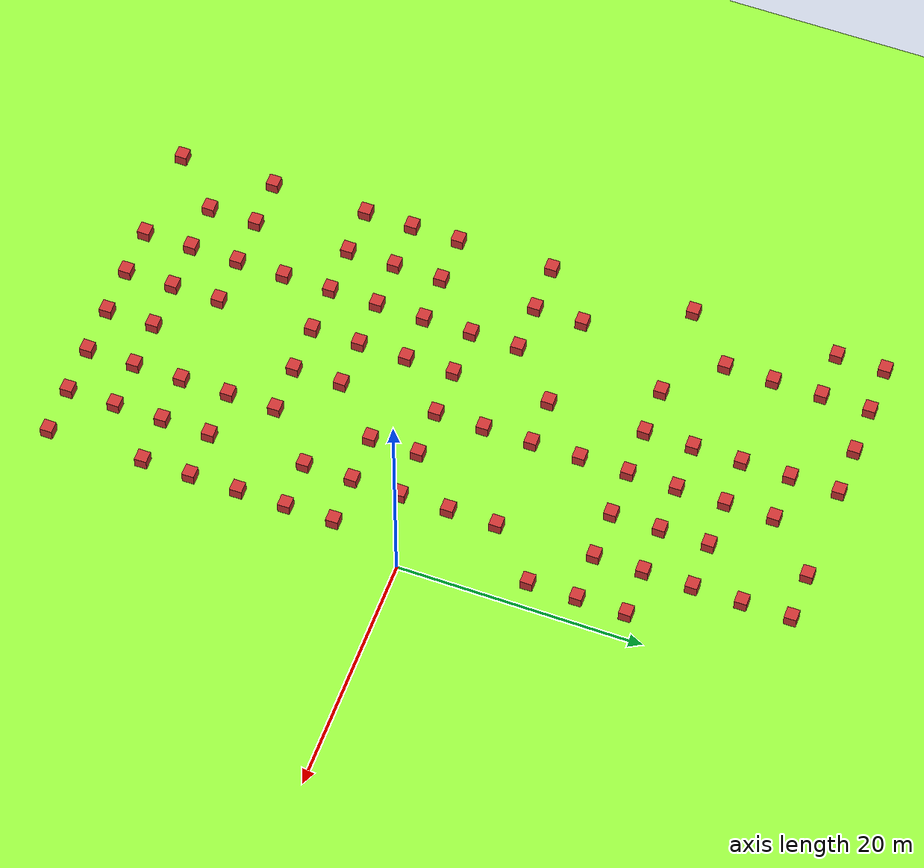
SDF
<sdf version="1.9">
 <world name="lawn_boxes">
  <model name="ground_plane">
   <static>true</static>
   <link name="link">
    <collision name="collision">
     <geometry><plane><normal>0 0 1</normal><size>1 1</size></plane></geometry>
     <surface>
      <friction><ode><mu>0.6</mu><mu2>0.6</mu2></ode></friction>
      <contact><collide_bitmask>65535</collide_bitmask><ode><min_depth>0.005</min_depth><kp>1e8</kp></ode></contact>
     </surface>
    </collision>
    <visual name="visual">
     <cast_shadows>false</cast_shadows>
     <geometry><plane><normal>0 0 1</normal><size>400 400</size></plane></geometry>
     <material>
      <diffuse>0.6 1.0 0.25 0.5</diffuse>
      <specular>0 0 0 0</specular>
      <emissive>0 0 0 0</emissive>
     </material>
    </visual>
    <inertial>
     <mass>1</mass>
     <inertia><ixx>1</ixx><ixy>0</ixy><ixz>0</ixz><iyy>1</iyy><iyz>0</iyz><izz>1</izz></inertia>
    </inertial>
   </link>
  </model>
  <model name="obstacle_box_0">
   <static>true</static>
   <pose>-30.00 -30.00 0.50 0 0 0</pose>
   <link name="link">
    <collision name="collision"><geometry><box><size>1.0 1.0 1.0</size></box></geometry></collision>
    <visual name="visual">
     <geometry><box><size>1.0 1.0 1.0</size></box></geometry>
     <material><diffuse>0.8 0.2 0.2 1</diffuse><ambient>0.8 0.2 0.2 1</ambient></material>
    </visual>
   </link>
  </model>
  <model name="obstacle_box_1">
   <static>true</static>
   <pose>-30.00 -22.00 0.50 0 0 0</pose>
   <link name="link">
    <collision name="collision"><geometry><box><size>1.0 1.0 1.0</size></box></geometry></collision>
    <visual name="visual">
     <geometry><box><size>1.0 1.0 1.0</size></box></geometry>
     <material><diffuse>0.8 0.2 0.2 1</diffuse><ambient>0.8 0.2 0.2 1</ambient></material>
    </visual>
   </link>
  </model>
  <model name="obstacle_box_2">
   <static>true</static>
   <pose>-30.00 -14.00 0.50 0 0 0</pose>
   <link name="link">
    <collision name="collision"><geometry><box><size>1.0 1.0 1.0</size></box></geometry></collision>
    <visual name="visual">
     <geometry><box><size>1.0 1.0 1.0</size></box></geometry>
     <material><diffuse>0.8 0.2 0.2 1</diffuse><ambient>0.8 0.2 0.2 1</ambient></material>
    </visual>
   </link>
  </model>
  <model name="obstacle_box_3">
   <static>true</static>
   <pose>-30.00 -10.00 0.50 0 0 0</pose>
   <link name="link">
    <collision name="collision"><geometry><box><size>1.0 1.0 1.0</size></box></geometry></collision>
    <visual name="visual">
     <geometry><box><size>1.0 1.0 1.0</size></box></geometry>
     <material><diffuse>0.8 0.2 0.2 1</diffuse><ambient>0.8 0.2 0.2 1</ambient></material>
    </visual>
   </link>
  </model>
  <model name="obstacle_box_4">
   <static>true</static>
   <pose>-30.00 -6.00 0.50 0 0 0</pose>
   <link name="link">
    <collision name="collision"><geometry><box><size>1.0 1.0 1.0</size></box></geometry></collision>
    <visual name="visual">
     <geometry><box><size>1.0 1.0 1.0</size></box></geometry>
     <material><diffuse>0.8 0.2 0.2 1</diffuse><ambient>0.8 0.2 0.2 1</ambient></material>
    </visual>
   </link>
  </model>
  <model name="obstacle_box_5">
   <static>true</static>
   <pose>-30.00 2.00 0.50 0 0 0</pose>
   <link name="link">
    <collision name="collision"><geometry><box><size>1.0 1.0 1.0</size></box></geometry></collision>
    <visual name="visual">
     <geometry><box><size>1.0 1.0 1.0</size></box></geometry>
     <material><diffuse>0.8 0.2 0.2 1</diffuse><ambient>0.8 0.2 0.2 1</ambient></material>
    </visual>
   </link>
  </model>
  <model name="obstacle_box_6">
   <static>true</static>
   <pose>-30.00 14.00 0.50 0 0 0</pose>
   <link name="link">
    <collision name="collision"><geometry><box><size>1.0 1.0 1.0</size></box></geometry></collision>
    <visual name="visual">
     <geometry><box><size>1.0 1.0 1.0</size></box></geometry>
     <material><diffuse>0.8 0.2 0.2 1</diffuse><ambient>0.8 0.2 0.2 1</ambient></material>
    </visual>
   </link>
  </model>
  <model name="obstacle_box_7">
   <static>true</static>
   <pose>-30.00 26.00 0.50 0 0 0</pose>
   <link name="link">
    <collision name="collision"><geometry><box><size>1.0 1.0 1.0</size></box></geometry></collision>
    <visual name="visual">
     <geometry><box><size>1.0 1.0 1.0</size></box></geometry>
     <material><diffuse>0.8 0.2 0.2 1</diffuse><ambient>0.8 0.2 0.2 1</ambient></material>
    </visual>
   </link>
  </model>
  <model name="obstacle_box_8">
   <static>true</static>
   <pose>-30.00 30.00 0.50 0 0 0</pose>
   <link name="link">
    <collision name="collision"><geometry><box><size>1.0 1.0 1.0</size></box></geometry></collision>
    <visual name="visual">
     <geometry><box><size>1.0 1.0 1.0</size></box></geometry>
     <material><diffuse>0.8 0.2 0.2 1</diffuse><ambient>0.8 0.2 0.2 1</ambient></material>
    </visual>
   </link>
  </model>
  <model name="obstacle_box_9">
   <static>true</static>
   <pose>-26.00 -26.00 0.50 0 0 0</pose>
   <link name="link">
    <collision name="collision"><geometry><box><size>1.0 1.0 1.0</size></box></geometry></collision>
    <visual name="visual">
     <geometry><box><size>1.0 1.0 1.0</size></box></geometry>
     <material><diffuse>0.8 0.2 0.2 1</diffuse><ambient>0.8 0.2 0.2 1</ambient></material>
    </visual>
   </link>
  </model>
  <model name="obstacle_box_10">
   <static>true</static>
   <pose>-26.00 -22.00 0.50 0 0 0</pose>
   <link name="link">
    <collision name="collision"><geometry><box><size>1.0 1.0 1.0</size></box></geometry></collision>
    <visual name="visual">
     <geometry><box><size>1.0 1.0 1.0</size></box></geometry>
     <material><diffuse>0.8 0.2 0.2 1</diffuse><ambient>0.8 0.2 0.2 1</ambient></material>
    </visual>
   </link>
  </model>
  <model name="obstacle_box_11">
   <static>true</static>
   <pose>-26.00 -14.00 0.50 0 0 0</pose>
   <link name="link">
    <collision name="collision"><geometry><box><size>1.0 1.0 1.0</size></box></geometry></collision>
    <visual name="visual">
     <geometry><box><size>1.0 1.0 1.0</size></box></geometry>
     <material><diffuse>0.8 0.2 0.2 1</diffuse><ambient>0.8 0.2 0.2 1</ambient></material>
    </visual>
   </link>
  </model>
  <model name="obstacle_box_12">
   <static>true</static>
   <pose>-26.00 -10.00 0.50 0 0 0</pose>
   <link name="link">
    <collision name="collision"><geometry><box><size>1.0 1.0 1.0</size></box></geometry></collision>
    <visual name="visual">
     <geometry><box><size>1.0 1.0 1.0</size></box></geometry>
     <material><diffuse>0.8 0.2 0.2 1</diffuse><ambient>0.8 0.2 0.2 1</ambient></material>
    </visual>
   </link>
  </model>
  <model name="obstacle_box_13">
   <static>true</static>
   <pose>-26.00 -6.00 0.50 0 0 0</pose>
   <link name="link">
    <collision name="collision"><geometry><box><size>1.0 1.0 1.0</size></box></geometry></collision>
    <visual name="visual">
     <geometry><box><size>1.0 1.0 1.0</size></box></geometry>
     <material><diffuse>0.8 0.2 0.2 1</diffuse><ambient>0.8 0.2 0.2 1</ambient></material>
    </visual>
   </link>
  </model>
  <model name="obstacle_box_14">
   <static>true</static>
   <pose>-26.00 2.00 0.50 0 0 0</pose>
   <link name="link">
    <collision name="collision"><geometry><box><size>1.0 1.0 1.0</size></box></geometry></collision>
    <visual name="visual">
     <geometry><box><size>1.0 1.0 1.0</size></box></geometry>
     <material><diffuse>0.8 0.2 0.2 1</diffuse><ambient>0.8 0.2 0.2 1</ambient></material>
    </visual>
   </link>
  </model>
  <model name="obstacle_box_15">
   <static>true</static>
   <pose>-26.00 6.00 0.50 0 0 0</pose>
   <link name="link">
    <collision name="collision"><geometry><box><size>1.0 1.0 1.0</size></box></geometry></collision>
    <visual name="visual">
     <geometry><box><size>1.0 1.0 1.0</size></box></geometry>
     <material><diffuse>0.8 0.2 0.2 1</diffuse><ambient>0.8 0.2 0.2 1</ambient></material>
    </visual>
   </link>
  </model>
  <model name="obstacle_box_16">
   <static>true</static>
   <pose>-26.00 18.00 0.50 0 0 0</pose>
   <link name="link">
    <collision name="collision"><geometry><box><size>1.0 1.0 1.0</size></box></geometry></collision>
    <visual name="visual">
     <geometry><box><size>1.0 1.0 1.0</size></box></geometry>
     <material><diffuse>0.8 0.2 0.2 1</diffuse><ambient>0.8 0.2 0.2 1</ambient></material>
    </visual>
   </link>
  </model>
  <model name="obstacle_box_17">
   <static>true</static>
   <pose>-26.00 22.00 0.50 0 0 0</pose>
   <link name="link">
    <collision name="collision"><geometry><box><size>1.0 1.0 1.0</size></box></geometry></collision>
    <visual name="visual">
     <geometry><box><size>1.0 1.0 1.0</size></box></geometry>
     <material><diffuse>0.8 0.2 0.2 1</diffuse><ambient>0.8 0.2 0.2 1</ambient></material>
    </visual>
   </link>
  </model>
  <model name="obstacle_box_18">
   <static>true</static>
   <pose>-26.00 26.00 0.50 0 0 0</pose>
   <link name="link">
    <collision name="collision"><geometry><box><size>1.0 1.0 1.0</size></box></geometry></collision>
    <visual name="visual">
     <geometry><box><size>1.0 1.0 1.0</size></box></geometry>
     <material><diffuse>0.8 0.2 0.2 1</diffuse><ambient>0.8 0.2 0.2 1</ambient></material>
    </visual>
   </link>
  </model>
  <model name="obstacle_box_19">
   <static>true</static>
   <pose>-26.00 30.00 0.50 0 0 0</pose>
   <link name="link">
    <collision name="collision"><geometry><box><size>1.0 1.0 1.0</size></box></geometry></collision>
    <visual name="visual">
     <geometry><box><size>1.0 1.0 1.0</size></box></geometry>
     <material><diffuse>0.8 0.2 0.2 1</diffuse><ambient>0.8 0.2 0.2 1</ambient></material>
    </visual>
   </link>
  </model>
  <model name="obstacle_box_20">
   <static>true</static>
   <pose>-22.00 -30.00 0.50 0 0 0</pose>
   <link name="link">
    <collision name="collision"><geometry><box><size>1.0 1.0 1.0</size></box></geometry></collision>
    <visual name="visual">
     <geometry><box><size>1.0 1.0 1.0</size></box></geometry>
     <material><diffuse>0.8 0.2 0.2 1</diffuse><ambient>0.8 0.2 0.2 1</ambient></material>
    </visual>
   </link>
  </model>
  <model name="obstacle_box_21">
   <static>true</static>
   <pose>-22.00 -26.00 0.50 0 0 0</pose>
   <link name="link">
    <collision name="collision"><geometry><box><size>1.0 1.0 1.0</size></box></geometry></collision>
    <visual name="visual">
     <geometry><box><size>1.0 1.0 1.0</size></box></geometry>
     <material><diffuse>0.8 0.2 0.2 1</diffuse><ambient>0.8 0.2 0.2 1</ambient></material>
    </visual>
   </link>
  </model>
  <model name="obstacle_box_22">
   <static>true</static>
   <pose>-22.00 -22.00 0.50 0 0 0</pose>
   <link name="link">
    <collision name="collision"><geometry><box><size>1.0 1.0 1.0</size></box></geometry></collision>
    <visual name="visual">
     <geometry><box><size>1.0 1.0 1.0</size></box></geometry>
     <material><diffuse>0.8 0.2 0.2 1</diffuse><ambient>0.8 0.2 0.2 1</ambient></material>
    </visual>
   </link>
  </model>
  <model name="obstacle_box_23">
   <static>true</static>
   <pose>-22.00 -18.00 0.50 0 0 0</pose>
   <link name="link">
    <collision name="collision"><geometry><box><size>1.0 1.0 1.0</size></box></geometry></collision>
    <visual name="visual">
     <geometry><box><size>1.0 1.0 1.0</size></box></geometry>
     <material><diffuse>0.8 0.2 0.2 1</diffuse><ambient>0.8 0.2 0.2 1</ambient></material>
    </visual>
   </link>
  </model>
  <model name="obstacle_box_24">
   <static>true</static>
   <pose>-22.00 -14.00 0.50 0 0 0</pose>
   <link name="link">
    <collision name="collision"><geometry><box><size>1.0 1.0 1.0</size></box></geometry></collision>
    <visual name="visual">
     <geometry><box><size>1.0 1.0 1.0</size></box></geometry>
     <material><diffuse>0.8 0.2 0.2 1</diffuse><ambient>0.8 0.2 0.2 1</ambient></material>
    </visual>
   </link>
  </model>
  <model name="obstacle_box_25">
   <static>true</static>
   <pose>-22.00 -10.00 0.50 0 0 0</pose>
   <link name="link">
    <collision name="collision"><geometry><box><size>1.0 1.0 1.0</size></box></geometry></collision>
    <visual name="visual">
     <geometry><box><size>1.0 1.0 1.0</size></box></geometry>
     <material><diffuse>0.8 0.2 0.2 1</diffuse><ambient>0.8 0.2 0.2 1</ambient></material>
    </visual>
   </link>
  </model>
  <model name="obstacle_box_26">
   <static>true</static>
   <pose>-22.00 -6.00 0.50 0 0 0</pose>
   <link name="link">
    <collision name="collision"><geometry><box><size>1.0 1.0 1.0</size></box></geometry></collision>
    <visual name="visual">
     <geometry><box><size>1.0 1.0 1.0</size></box></geometry>
     <material><diffuse>0.8 0.2 0.2 1</diffuse><ambient>0.8 0.2 0.2 1</ambient></material>
    </visual>
   </link>
  </model>
  <model name="obstacle_box_27">
   <static>true</static>
   <pose>-22.00 -2.00 0.50 0 0 0</pose>
   <link name="link">
    <collision name="collision"><geometry><box><size>1.0 1.0 1.0</size></box></geometry></collision>
    <visual name="visual">
     <geometry><box><size>1.0 1.0 1.0</size></box></geometry>
     <material><diffuse>0.8 0.2 0.2 1</diffuse><ambient>0.8 0.2 0.2 1</ambient></material>
    </visual>
   </link>
  </model>
  <model name="obstacle_box_28">
   <static>true</static>
   <pose>-22.00 2.00 0.50 0 0 0</pose>
   <link name="link">
    <collision name="collision"><geometry><box><size>1.0 1.0 1.0</size></box></geometry></collision>
    <visual name="visual">
     <geometry><box><size>1.0 1.0 1.0</size></box></geometry>
     <material><diffuse>0.8 0.2 0.2 1</diffuse><ambient>0.8 0.2 0.2 1</ambient></material>
    </visual>
   </link>
  </model>
  <model name="obstacle_box_29">
   <static>true</static>
   <pose>-22.00 14.00 0.50 0 0 0</pose>
   <link name="link">
    <collision name="collision"><geometry><box><size>1.0 1.0 1.0</size></box></geometry></collision>
    <visual name="visual">
     <geometry><box><size>1.0 1.0 1.0</size></box></geometry>
     <material><diffuse>0.8 0.2 0.2 1</diffuse><ambient>0.8 0.2 0.2 1</ambient></material>
    </visual>
   </link>
  </model>
  <model name="obstacle_box_30">
   <static>true</static>
   <pose>-22.00 30.00 0.50 0 0 0</pose>
   <link name="link">
    <collision name="collision"><geometry><box><size>1.0 1.0 1.0</size></box></geometry></collision>
    <visual name="visual">
     <geometry><box><size>1.0 1.0 1.0</size></box></geometry>
     <material><diffuse>0.8 0.2 0.2 1</diffuse><ambient>0.8 0.2 0.2 1</ambient></material>
    </visual>
   </link>
  </model>
  <model name="obstacle_box_31">
   <static>true</static>
   <pose>-18.00 -30.00 0.50 0 0 0</pose>
   <link name="link">
    <collision name="collision"><geometry><box><size>1.0 1.0 1.0</size></box></geometry></collision>
    <visual name="visual">
     <geometry><box><size>1.0 1.0 1.0</size></box></geometry>
     <material><diffuse>0.8 0.2 0.2 1</diffuse><ambient>0.8 0.2 0.2 1</ambient></material>
    </visual>
   </link>
  </model>
  <model name="obstacle_box_32">
   <static>true</static>
   <pose>-18.00 -26.00 0.50 0 0 0</pose>
   <link name="link">
    <collision name="collision"><geometry><box><size>1.0 1.0 1.0</size></box></geometry></collision>
    <visual name="visual">
     <geometry><box><size>1.0 1.0 1.0</size></box></geometry>
     <material><diffuse>0.8 0.2 0.2 1</diffuse><ambient>0.8 0.2 0.2 1</ambient></material>
    </visual>
   </link>
  </model>
  <model name="obstacle_box_33">
   <static>true</static>
   <pose>-18.00 -22.00 0.50 0 0 0</pose>
   <link name="link">
    <collision name="collision"><geometry><box><size>1.0 1.0 1.0</size></box></geometry></collision>
    <visual name="visual">
     <geometry><box><size>1.0 1.0 1.0</size></box></geometry>
     <material><diffuse>0.8 0.2 0.2 1</diffuse><ambient>0.8 0.2 0.2 1</ambient></material>
    </visual>
   </link>
  </model>
  <model name="obstacle_box_34">
   <static>true</static>
   <pose>-18.00 -14.00 0.50 0 0 0</pose>
   <link name="link">
    <collision name="collision"><geometry><box><size>1.0 1.0 1.0</size></box></geometry></collision>
    <visual name="visual">
     <geometry><box><size>1.0 1.0 1.0</size></box></geometry>
     <material><diffuse>0.8 0.2 0.2 1</diffuse><ambient>0.8 0.2 0.2 1</ambient></material>
    </visual>
   </link>
  </model>
  <model name="obstacle_box_35">
   <static>true</static>
   <pose>-18.00 -10.00 0.50 0 0 0</pose>
   <link name="link">
    <collision name="collision"><geometry><box><size>1.0 1.0 1.0</size></box></geometry></collision>
    <visual name="visual">
     <geometry><box><size>1.0 1.0 1.0</size></box></geometry>
     <material><diffuse>0.8 0.2 0.2 1</diffuse><ambient>0.8 0.2 0.2 1</ambient></material>
    </visual>
   </link>
  </model>
  <model name="obstacle_box_36">
   <static>true</static>
   <pose>-18.00 -6.00 0.50 0 0 0</pose>
   <link name="link">
    <collision name="collision"><geometry><box><size>1.0 1.0 1.0</size></box></geometry></collision>
    <visual name="visual">
     <geometry><box><size>1.0 1.0 1.0</size></box></geometry>
     <material><diffuse>0.8 0.2 0.2 1</diffuse><ambient>0.8 0.2 0.2 1</ambient></material>
    </visual>
   </link>
  </model>
  <model name="obstacle_box_37">
   <static>true</static>
   <pose>-18.00 -2.00 0.50 0 0 0</pose>
   <link name="link">
    <collision name="collision"><geometry><box><size>1.0 1.0 1.0</size></box></geometry></collision>
    <visual name="visual">
     <geometry><box><size>1.0 1.0 1.0</size></box></geometry>
     <material><diffuse>0.8 0.2 0.2 1</diffuse><ambient>0.8 0.2 0.2 1</ambient></material>
    </visual>
   </link>
  </model>
  <model name="obstacle_box_38">
   <static>true</static>
   <pose>-18.00 6.00 0.50 0 0 0</pose>
   <link name="link">
    <collision name="collision"><geometry><box><size>1.0 1.0 1.0</size></box></geometry></collision>
    <visual name="visual">
     <geometry><box><size>1.0 1.0 1.0</size></box></geometry>
     <material><diffuse>0.8 0.2 0.2 1</diffuse><ambient>0.8 0.2 0.2 1</ambient></material>
    </visual>
   </link>
  </model>
  <model name="obstacle_box_39">
   <static>true</static>
   <pose>-18.00 14.00 0.50 0 0 0</pose>
   <link name="link">
    <collision name="collision"><geometry><box><size>1.0 1.0 1.0</size></box></geometry></collision>
    <visual name="visual">
     <geometry><box><size>1.0 1.0 1.0</size></box></geometry>
     <material><diffuse>0.8 0.2 0.2 1</diffuse><ambient>0.8 0.2 0.2 1</ambient></material>
    </visual>
   </link>
  </model>
  <model name="obstacle_box_40">
   <static>true</static>
   <pose>-18.00 18.00 0.50 0 0 0</pose>
   <link name="link">
    <collision name="collision"><geometry><box><size>1.0 1.0 1.0</size></box></geometry></collision>
    <visual name="visual">
     <geometry><box><size>1.0 1.0 1.0</size></box></geometry>
     <material><diffuse>0.8 0.2 0.2 1</diffuse><ambient>0.8 0.2 0.2 1</ambient></material>
    </visual>
   </link>
  </model>
  <model name="obstacle_box_41">
   <static>true</static>
   <pose>-18.00 22.00 0.50 0 0 0</pose>
   <link name="link">
    <collision name="collision"><geometry><box><size>1.0 1.0 1.0</size></box></geometry></collision>
    <visual name="visual">
     <geometry><box><size>1.0 1.0 1.0</size></box></geometry>
     <material><diffuse>0.8 0.2 0.2 1</diffuse><ambient>0.8 0.2 0.2 1</ambient></material>
    </visual>
   </link>
  </model>
  <model name="obstacle_box_42">
   <static>true</static>
   <pose>-18.00 26.00 0.50 0 0 0</pose>
   <link name="link">
    <collision name="collision"><geometry><box><size>1.0 1.0 1.0</size></box></geometry></collision>
    <visual name="visual">
     <geometry><box><size>1.0 1.0 1.0</size></box></geometry>
     <material><diffuse>0.8 0.2 0.2 1</diffuse><ambient>0.8 0.2 0.2 1</ambient></material>
    </visual>
   </link>
  </model>
  <model name="obstacle_box_43">
   <static>true</static>
   <pose>-18.00 30.00 0.50 0 0 0</pose>
   <link name="link">
    <collision name="collision"><geometry><box><size>1.0 1.0 1.0</size></box></geometry></collision>
    <visual name="visual">
     <geometry><box><size>1.0 1.0 1.0</size></box></geometry>
     <material><diffuse>0.8 0.2 0.2 1</diffuse><ambient>0.8 0.2 0.2 1</ambient></material>
    </visual>
   </link>
  </model>
  <model name="obstacle_box_44">
   <static>true</static>
   <pose>-14.00 -30.00 0.50 0 0 0</pose>
   <link name="link">
    <collision name="collision"><geometry><box><size>1.0 1.0 1.0</size></box></geometry></collision>
    <visual name="visual">
     <geometry><box><size>1.0 1.0 1.0</size></box></geometry>
     <material><diffuse>0.8 0.2 0.2 1</diffuse><ambient>0.8 0.2 0.2 1</ambient></material>
    </visual>
   </link>
  </model>
  <model name="obstacle_box_45">
   <static>true</static>
   <pose>-14.00 -26.00 0.50 0 0 0</pose>
   <link name="link">
    <collision name="collision"><geometry><box><size>1.0 1.0 1.0</size></box></geometry></collision>
    <visual name="visual">
     <geometry><box><size>1.0 1.0 1.0</size></box></geometry>
     <material><diffuse>0.8 0.2 0.2 1</diffuse><ambient>0.8 0.2 0.2 1</ambient></material>
    </visual>
   </link>
  </model>
  <model name="obstacle_box_46">
   <static>true</static>
   <pose>-14.00 -14.00 0.50 0 0 0</pose>
   <link name="link">
    <collision name="collision"><geometry><box><size>1.0 1.0 1.0</size></box></geometry></collision>
    <visual name="visual">
     <geometry><box><size>1.0 1.0 1.0</size></box></geometry>
     <material><diffuse>0.8 0.2 0.2 1</diffuse><ambient>0.8 0.2 0.2 1</ambient></material>
    </visual>
   </link>
  </model>
  <model name="obstacle_box_47">
   <static>true</static>
   <pose>-14.00 -10.00 0.50 0 0 0</pose>
   <link name="link">
    <collision name="collision"><geometry><box><size>1.0 1.0 1.0</size></box></geometry></collision>
    <visual name="visual">
     <geometry><box><size>1.0 1.0 1.0</size></box></geometry>
     <material><diffuse>0.8 0.2 0.2 1</diffuse><ambient>0.8 0.2 0.2 1</ambient></material>
    </visual>
   </link>
  </model>
  <model name="obstacle_box_48">
   <static>true</static>
   <pose>-14.00 -2.00 0.50 0 0 0</pose>
   <link name="link">
    <collision name="collision"><geometry><box><size>1.0 1.0 1.0</size></box></geometry></collision>
    <visual name="visual">
     <geometry><box><size>1.0 1.0 1.0</size></box></geometry>
     <material><diffuse>0.8 0.2 0.2 1</diffuse><ambient>0.8 0.2 0.2 1</ambient></material>
    </visual>
   </link>
  </model>
  <model name="obstacle_box_49">
   <static>true</static>
   <pose>-14.00 2.00 0.50 0 0 0</pose>
   <link name="link">
    <collision name="collision"><geometry><box><size>1.0 1.0 1.0</size></box></geometry></collision>
    <visual name="visual">
     <geometry><box><size>1.0 1.0 1.0</size></box></geometry>
     <material><diffuse>0.8 0.2 0.2 1</diffuse><ambient>0.8 0.2 0.2 1</ambient></material>
    </visual>
   </link>
  </model>
  <model name="obstacle_box_50">
   <static>true</static>
   <pose>-14.00 6.00 0.50 0 0 0</pose>
   <link name="link">
    <collision name="collision"><geometry><box><size>1.0 1.0 1.0</size></box></geometry></collision>
    <visual name="visual">
     <geometry><box><size>1.0 1.0 1.0</size></box></geometry>
     <material><diffuse>0.8 0.2 0.2 1</diffuse><ambient>0.8 0.2 0.2 1</ambient></material>
    </visual>
   </link>
  </model>
  <model name="obstacle_box_51">
   <static>true</static>
   <pose>-14.00 10.00 0.50 0 0 0</pose>
   <link name="link">
    <collision name="collision"><geometry><box><size>1.0 1.0 1.0</size></box></geometry></collision>
    <visual name="visual">
     <geometry><box><size>1.0 1.0 1.0</size></box></geometry>
     <material><diffuse>0.8 0.2 0.2 1</diffuse><ambient>0.8 0.2 0.2 1</ambient></material>
    </visual>
   </link>
  </model>
  <model name="obstacle_box_52">
   <static>true</static>
   <pose>-14.00 14.00 0.50 0 0 0</pose>
   <link name="link">
    <collision name="collision"><geometry><box><size>1.0 1.0 1.0</size></box></geometry></collision>
    <visual name="visual">
     <geometry><box><size>1.0 1.0 1.0</size></box></geometry>
     <material><diffuse>0.8 0.2 0.2 1</diffuse><ambient>0.8 0.2 0.2 1</ambient></material>
    </visual>
   </link>
  </model>
  <model name="obstacle_box_53">
   <static>true</static>
   <pose>-14.00 18.00 0.50 0 0 0</pose>
   <link name="link">
    <collision name="collision"><geometry><box><size>1.0 1.0 1.0</size></box></geometry></collision>
    <visual name="visual">
     <geometry><box><size>1.0 1.0 1.0</size></box></geometry>
     <material><diffuse>0.8 0.2 0.2 1</diffuse><ambient>0.8 0.2 0.2 1</ambient></material>
    </visual>
   </link>
  </model>
  <model name="obstacle_box_54">
   <static>true</static>
   <pose>-14.00 22.00 0.50 0 0 0</pose>
   <link name="link">
    <collision name="collision"><geometry><box><size>1.0 1.0 1.0</size></box></geometry></collision>
    <visual name="visual">
     <geometry><box><size>1.0 1.0 1.0</size></box></geometry>
     <material><diffuse>0.8 0.2 0.2 1</diffuse><ambient>0.8 0.2 0.2 1</ambient></material>
    </visual>
   </link>
  </model>
  <model name="obstacle_box_55">
   <static>true</static>
   <pose>-14.00 26.00 0.50 0 0 0</pose>
   <link name="link">
    <collision name="collision"><geometry><box><size>1.0 1.0 1.0</size></box></geometry></collision>
    <visual name="visual">
     <geometry><box><size>1.0 1.0 1.0</size></box></geometry>
     <material><diffuse>0.8 0.2 0.2 1</diffuse><ambient>0.8 0.2 0.2 1</ambient></material>
    </visual>
   </link>
  </model>
  <model name="obstacle_box_56">
   <static>true</static>
   <pose>-10.00 -30.00 0.50 0 0 0</pose>
   <link name="link">
    <collision name="collision"><geometry><box><size>1.0 1.0 1.0</size></box></geometry></collision>
    <visual name="visual">
     <geometry><box><size>1.0 1.0 1.0</size></box></geometry>
     <material><diffuse>0.8 0.2 0.2 1</diffuse><ambient>0.8 0.2 0.2 1</ambient></material>
    </visual>
   </link>
  </model>
  <model name="obstacle_box_57">
   <static>true</static>
   <pose>-10.00 -26.00 0.50 0 0 0</pose>
   <link name="link">
    <collision name="collision"><geometry><box><size>1.0 1.0 1.0</size></box></geometry></collision>
    <visual name="visual">
     <geometry><box><size>1.0 1.0 1.0</size></box></geometry>
     <material><diffuse>0.8 0.2 0.2 1</diffuse><ambient>0.8 0.2 0.2 1</ambient></material>
    </visual>
   </link>
  </model>
  <model name="obstacle_box_58">
   <static>true</static>
   <pose>-10.00 -22.00 0.50 0 0 0</pose>
   <link name="link">
    <collision name="collision"><geometry><box><size>1.0 1.0 1.0</size></box></geometry></collision>
    <visual name="visual">
     <geometry><box><size>1.0 1.0 1.0</size></box></geometry>
     <material><diffuse>0.8 0.2 0.2 1</diffuse><ambient>0.8 0.2 0.2 1</ambient></material>
    </visual>
   </link>
  </model>
  <model name="obstacle_box_59">
   <static>true</static>
   <pose>-10.00 -18.00 0.50 0 0 0</pose>
   <link name="link">
    <collision name="collision"><geometry><box><size>1.0 1.0 1.0</size></box></geometry></collision>
    <visual name="visual">
     <geometry><box><size>1.0 1.0 1.0</size></box></geometry>
     <material><diffuse>0.8 0.2 0.2 1</diffuse><ambient>0.8 0.2 0.2 1</ambient></material>
    </visual>
   </link>
  </model>
  <model name="obstacle_box_60">
   <static>true</static>
   <pose>-10.00 -14.00 0.50 0 0 0</pose>
   <link name="link">
    <collision name="collision"><geometry><box><size>1.0 1.0 1.0</size></box></geometry></collision>
    <visual name="visual">
     <geometry><box><size>1.0 1.0 1.0</size></box></geometry>
     <material><diffuse>0.8 0.2 0.2 1</diffuse><ambient>0.8 0.2 0.2 1</ambient></material>
    </visual>
   </link>
  </model>
  <model name="obstacle_box_61">
   <static>true</static>
   <pose>-10.00 -6.00 0.50 0 0 0</pose>
   <link name="link">
    <collision name="collision"><geometry><box><size>1.0 1.0 1.0</size></box></geometry></collision>
    <visual name="visual">
     <geometry><box><size>1.0 1.0 1.0</size></box></geometry>
     <material><diffuse>0.8 0.2 0.2 1</diffuse><ambient>0.8 0.2 0.2 1</ambient></material>
    </visual>
   </link>
  </model>
  <model name="obstacle_box_62">
   <static>true</static>
   <pose>-10.00 -2.00 0.50 0 0 0</pose>
   <link name="link">
    <collision name="collision"><geometry><box><size>1.0 1.0 1.0</size></box></geometry></collision>
    <visual name="visual">
     <geometry><box><size>1.0 1.0 1.0</size></box></geometry>
     <material><diffuse>0.8 0.2 0.2 1</diffuse><ambient>0.8 0.2 0.2 1</ambient></material>
    </visual>
   </link>
  </model>
  <model name="obstacle_box_63">
   <static>true</static>
   <pose>-10.00 14.00 0.50 0 0 0</pose>
   <link name="link">
    <collision name="collision"><geometry><box><size>1.0 1.0 1.0</size></box></geometry></collision>
    <visual name="visual">
     <geometry><box><size>1.0 1.0 1.0</size></box></geometry>
     <material><diffuse>0.8 0.2 0.2 1</diffuse><ambient>0.8 0.2 0.2 1</ambient></material>
    </visual>
   </link>
  </model>
  <model name="obstacle_box_64">
   <static>true</static>
   <pose>-10.00 18.00 0.50 0 0 0</pose>
   <link name="link">
    <collision name="collision"><geometry><box><size>1.0 1.0 1.0</size></box></geometry></collision>
    <visual name="visual">
     <geometry><box><size>1.0 1.0 1.0</size></box></geometry>
     <material><diffuse>0.8 0.2 0.2 1</diffuse><ambient>0.8 0.2 0.2 1</ambient></material>
    </visual>
   </link>
  </model>
  <model name="obstacle_box_65">
   <static>true</static>
   <pose>-10.00 22.00 0.50 0 0 0</pose>
   <link name="link">
    <collision name="collision"><geometry><box><size>1.0 1.0 1.0</size></box></geometry></collision>
    <visual name="visual">
     <geometry><box><size>1.0 1.0 1.0</size></box></geometry>
     <material><diffuse>0.8 0.2 0.2 1</diffuse><ambient>0.8 0.2 0.2 1</ambient></material>
    </visual>
   </link>
  </model>
  <model name="obstacle_box_66">
   <static>true</static>
   <pose>-10.00 30.00 0.50 0 0 0</pose>
   <link name="link">
    <collision name="collision"><geometry><box><size>1.0 1.0 1.0</size></box></geometry></collision>
    <visual name="visual">
     <geometry><box><size>1.0 1.0 1.0</size></box></geometry>
     <material><diffuse>0.8 0.2 0.2 1</diffuse><ambient>0.8 0.2 0.2 1</ambient></material>
    </visual>
   </link>
  </model>
  <model name="obstacle_box_67">
   <static>true</static>
   <pose>-6.00 -30.00 0.50 0 0 0</pose>
   <link name="link">
    <collision name="collision"><geometry><box><size>1.0 1.0 1.0</size></box></geometry></collision>
    <visual name="visual">
     <geometry><box><size>1.0 1.0 1.0</size></box></geometry>
     <material><diffuse>0.8 0.2 0.2 1</diffuse><ambient>0.8 0.2 0.2 1</ambient></material>
    </visual>
   </link>
  </model>
  <model name="obstacle_box_68">
   <static>true</static>
   <pose>-6.00 -26.00 0.50 0 0 0</pose>
   <link name="link">
    <collision name="collision"><geometry><box><size>1.0 1.0 1.0</size></box></geometry></collision>
    <visual name="visual">
     <geometry><box><size>1.0 1.0 1.0</size></box></geometry>
     <material><diffuse>0.8 0.2 0.2 1</diffuse><ambient>0.8 0.2 0.2 1</ambient></material>
    </visual>
   </link>
  </model>
  <model name="obstacle_box_69">
   <static>true</static>
   <pose>-6.00 -22.00 0.50 0 0 0</pose>
   <link name="link">
    <collision name="collision"><geometry><box><size>1.0 1.0 1.0</size></box></geometry></collision>
    <visual name="visual">
     <geometry><box><size>1.0 1.0 1.0</size></box></geometry>
     <material><diffuse>0.8 0.2 0.2 1</diffuse><ambient>0.8 0.2 0.2 1</ambient></material>
    </visual>
   </link>
  </model>
  <model name="obstacle_box_70">
   <static>true</static>
   <pose>-6.00 -18.00 0.50 0 0 0</pose>
   <link name="link">
    <collision name="collision"><geometry><box><size>1.0 1.0 1.0</size></box></geometry></collision>
    <visual name="visual">
     <geometry><box><size>1.0 1.0 1.0</size></box></geometry>
     <material><diffuse>0.8 0.2 0.2 1</diffuse><ambient>0.8 0.2 0.2 1</ambient></material>
    </visual>
   </link>
  </model>
  <model name="obstacle_box_71">
   <static>true</static>
   <pose>-6.00 -10.00 0.50 0 0 0</pose>
   <link name="link">
    <collision name="collision"><geometry><box><size>1.0 1.0 1.0</size></box></geometry></collision>
    <visual name="visual">
     <geometry><box><size>1.0 1.0 1.0</size></box></geometry>
     <material><diffuse>0.8 0.2 0.2 1</diffuse><ambient>0.8 0.2 0.2 1</ambient></material>
    </visual>
   </link>
  </model>
  <model name="obstacle_box_72">
   <static>true</static>
   <pose>-6.00 -6.00 0.50 0 0 0</pose>
   <link name="link">
    <collision name="collision"><geometry><box><size>1.0 1.0 1.0</size></box></geometry></collision>
    <visual name="visual">
     <geometry><box><size>1.0 1.0 1.0</size></box></geometry>
     <material><diffuse>0.8 0.2 0.2 1</diffuse><ambient>0.8 0.2 0.2 1</ambient></material>
    </visual>
   </link>
  </model>
  <model name="obstacle_box_73">
   <static>true</static>
   <pose>-6.00 -2.00 0.50 0 0 0</pose>
   <link name="link">
    <collision name="collision"><geometry><box><size>1.0 1.0 1.0</size></box></geometry></collision>
    <visual name="visual">
     <geometry><box><size>1.0 1.0 1.0</size></box></geometry>
     <material><diffuse>0.8 0.2 0.2 1</diffuse><ambient>0.8 0.2 0.2 1</ambient></material>
    </visual>
   </link>
  </model>
  <model name="obstacle_box_74">
   <static>true</static>
   <pose>-6.00 2.00 0.50 0 0 0</pose>
   <link name="link">
    <collision name="collision"><geometry><box><size>1.0 1.0 1.0</size></box></geometry></collision>
    <visual name="visual">
     <geometry><box><size>1.0 1.0 1.0</size></box></geometry>
     <material><diffuse>0.8 0.2 0.2 1</diffuse><ambient>0.8 0.2 0.2 1</ambient></material>
    </visual>
   </link>
  </model>
  <model name="obstacle_box_75">
   <static>true</static>
   <pose>-6.00 6.00 0.50 0 0 0</pose>
   <link name="link">
    <collision name="collision"><geometry><box><size>1.0 1.0 1.0</size></box></geometry></collision>
    <visual name="visual">
     <geometry><box><size>1.0 1.0 1.0</size></box></geometry>
     <material><diffuse>0.8 0.2 0.2 1</diffuse><ambient>0.8 0.2 0.2 1</ambient></material>
    </visual>
   </link>
  </model>
  <model name="obstacle_box_76">
   <static>true</static>
   <pose>-6.00 14.00 0.50 0 0 0</pose>
   <link name="link">
    <collision name="collision"><geometry><box><size>1.0 1.0 1.0</size></box></geometry></collision>
    <visual name="visual">
     <geometry><box><size>1.0 1.0 1.0</size></box></geometry>
     <material><diffuse>0.8 0.2 0.2 1</diffuse><ambient>0.8 0.2 0.2 1</ambient></material>
    </visual>
   </link>
  </model>
  <model name="obstacle_box_77">
   <static>true</static>
   <pose>-6.00 18.00 0.50 0 0 0</pose>
   <link name="link">
    <collision name="collision"><geometry><box><size>1.0 1.0 1.0</size></box></geometry></collision>
    <visual name="visual">
     <geometry><box><size>1.0 1.0 1.0</size></box></geometry>
     <material><diffuse>0.8 0.2 0.2 1</diffuse><ambient>0.8 0.2 0.2 1</ambient></material>
    </visual>
   </link>
  </model>
  <model name="obstacle_box_78">
   <static>true</static>
   <pose>-6.00 22.00 0.50 0 0 0</pose>
   <link name="link">
    <collision name="collision"><geometry><box><size>1.0 1.0 1.0</size></box></geometry></collision>
    <visual name="visual">
     <geometry><box><size>1.0 1.0 1.0</size></box></geometry>
     <material><diffuse>0.8 0.2 0.2 1</diffuse><ambient>0.8 0.2 0.2 1</ambient></material>
    </visual>
   </link>
  </model>
  <model name="obstacle_box_79">
   <static>true</static>
   <pose>-6.00 26.00 0.50 0 0 0</pose>
   <link name="link">
    <collision name="collision"><geometry><box><size>1.0 1.0 1.0</size></box></geometry></collision>
    <visual name="visual">
     <geometry><box><size>1.0 1.0 1.0</size></box></geometry>
     <material><diffuse>0.8 0.2 0.2 1</diffuse><ambient>0.8 0.2 0.2 1</ambient></material>
    </visual>
   </link>
  </model>
  <model name="obstacle_box_80">
   <static>true</static>
   <pose>-6.00 30.00 0.50 0 0 0</pose>
   <link name="link">
    <collision name="collision"><geometry><box><size>1.0 1.0 1.0</size></box></geometry></collision>
    <visual name="visual">
     <geometry><box><size>1.0 1.0 1.0</size></box></geometry>
     <material><diffuse>0.8 0.2 0.2 1</diffuse><ambient>0.8 0.2 0.2 1</ambient></material>
    </visual>
   </link>
  </model>
  <model name="obstacle_box_81">
   <static>true</static>
   <pose>-2.00 -30.00 0.50 0 0 0</pose>
   <link name="link">
    <collision name="collision"><geometry><box><size>1.0 1.0 1.0</size></box></geometry></collision>
    <visual name="visual">
     <geometry><box><size>1.0 1.0 1.0</size></box></geometry>
     <material><diffuse>0.8 0.2 0.2 1</diffuse><ambient>0.8 0.2 0.2 1</ambient></material>
    </visual>
   </link>
  </model>
  <model name="obstacle_box_82">
   <static>true</static>
   <pose>-2.00 -22.00 0.50 0 0 0</pose>
   <link name="link">
    <collision name="collision"><geometry><box><size>1.0 1.0 1.0</size></box></geometry></collision>
    <visual name="visual">
     <geometry><box><size>1.0 1.0 1.0</size></box></geometry>
     <material><diffuse>0.8 0.2 0.2 1</diffuse><ambient>0.8 0.2 0.2 1</ambient></material>
    </visual>
   </link>
  </model>
  <model name="obstacle_box_83">
   <static>true</static>
   <pose>-2.00 -18.00 0.50 0 0 0</pose>
   <link name="link">
    <collision name="collision"><geometry><box><size>1.0 1.0 1.0</size></box></geometry></collision>
    <visual name="visual">
     <geometry><box><size>1.0 1.0 1.0</size></box></geometry>
     <material><diffuse>0.8 0.2 0.2 1</diffuse><ambient>0.8 0.2 0.2 1</ambient></material>
    </visual>
   </link>
  </model>
  <model name="obstacle_box_84">
   <static>true</static>
   <pose>-2.00 -14.00 0.50 0 0 0</pose>
   <link name="link">
    <collision name="collision"><geometry><box><size>1.0 1.0 1.0</size></box></geometry></collision>
    <visual name="visual">
     <geometry><box><size>1.0 1.0 1.0</size></box></geometry>
     <material><diffuse>0.8 0.2 0.2 1</diffuse><ambient>0.8 0.2 0.2 1</ambient></material>
    </visual>
   </link>
  </model>
  <model name="obstacle_box_85">
   <static>true</static>
   <pose>-2.00 -10.00 0.50 0 0 0</pose>
   <link name="link">
    <collision name="collision"><geometry><box><size>1.0 1.0 1.0</size></box></geometry></collision>
    <visual name="visual">
     <geometry><box><size>1.0 1.0 1.0</size></box></geometry>
     <material><diffuse>0.8 0.2 0.2 1</diffuse><ambient>0.8 0.2 0.2 1</ambient></material>
    </visual>
   </link>
  </model>
  <model name="obstacle_box_86">
   <static>true</static>
   <pose>-2.00 -6.00 0.50 0 0 0</pose>
   <link name="link">
    <collision name="collision"><geometry><box><size>1.0 1.0 1.0</size></box></geometry></collision>
    <visual name="visual">
     <geometry><box><size>1.0 1.0 1.0</size></box></geometry>
     <material><diffuse>0.8 0.2 0.2 1</diffuse><ambient>0.8 0.2 0.2 1</ambient></material>
    </visual>
   </link>
  </model>
  <model name="obstacle_box_87">
   <static>true</static>
   <pose>-2.00 10.00 0.50 0 0 0</pose>
   <link name="link">
    <collision name="collision"><geometry><box><size>1.0 1.0 1.0</size></box></geometry></collision>
    <visual name="visual">
     <geometry><box><size>1.0 1.0 1.0</size></box></geometry>
     <material><diffuse>0.8 0.2 0.2 1</diffuse><ambient>0.8 0.2 0.2 1</ambient></material>
    </visual>
   </link>
  </model>
  <model name="obstacle_box_88">
   <static>true</static>
   <pose>-2.00 14.00 0.50 0 0 0</pose>
   <link name="link">
    <collision name="collision"><geometry><box><size>1.0 1.0 1.0</size></box></geometry></collision>
    <visual name="visual">
     <geometry><box><size>1.0 1.0 1.0</size></box></geometry>
     <material><diffuse>0.8 0.2 0.2 1</diffuse><ambient>0.8 0.2 0.2 1</ambient></material>
    </visual>
   </link>
  </model>
  <model name="obstacle_box_89">
   <static>true</static>
   <pose>-2.00 18.00 0.50 0 0 0</pose>
   <link name="link">
    <collision name="collision"><geometry><box><size>1.0 1.0 1.0</size></box></geometry></collision>
    <visual name="visual">
     <geometry><box><size>1.0 1.0 1.0</size></box></geometry>
     <material><diffuse>0.8 0.2 0.2 1</diffuse><ambient>0.8 0.2 0.2 1</ambient></material>
    </visual>
   </link>
  </model>
 </world>
</sdf>
